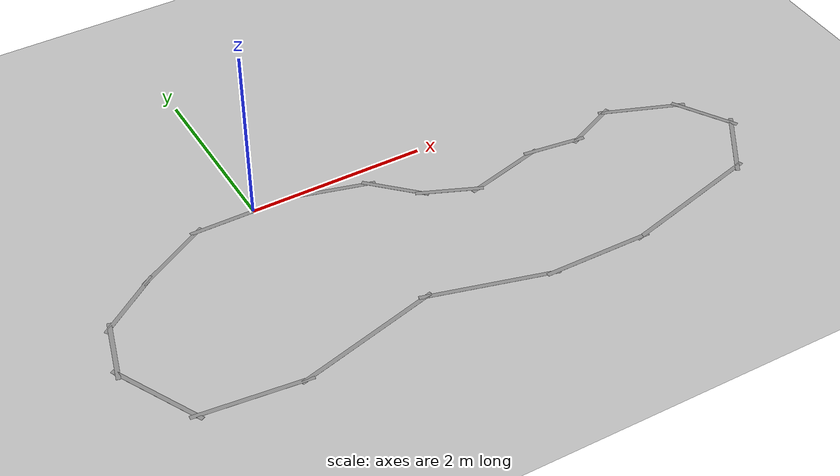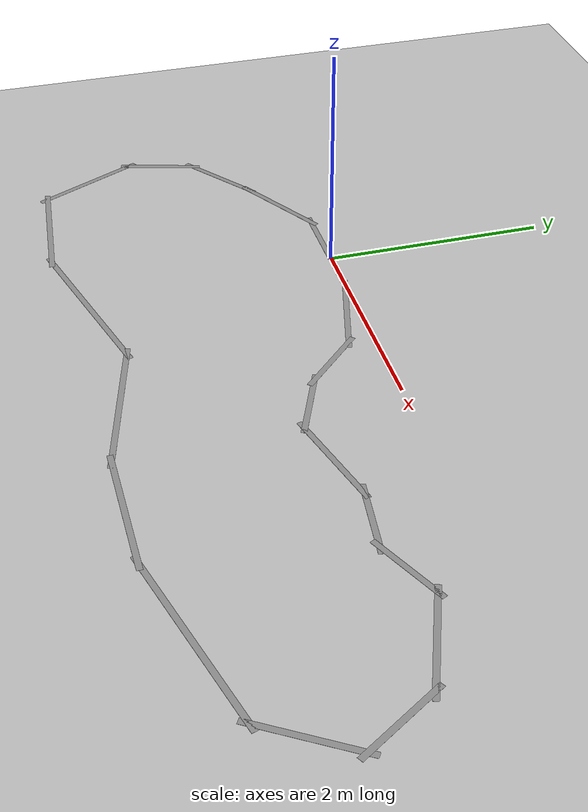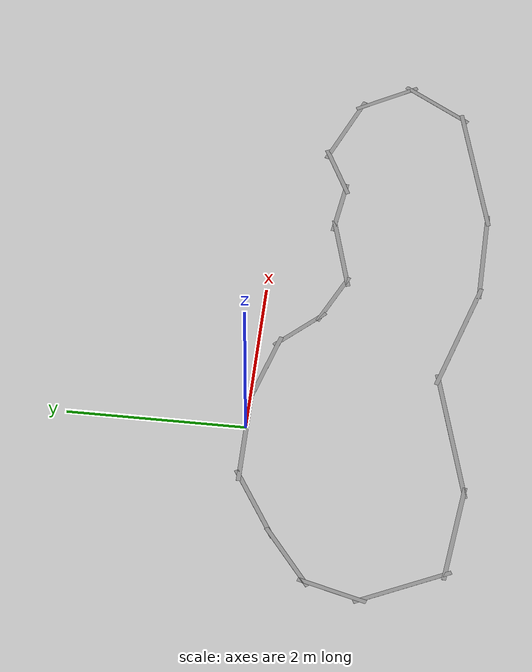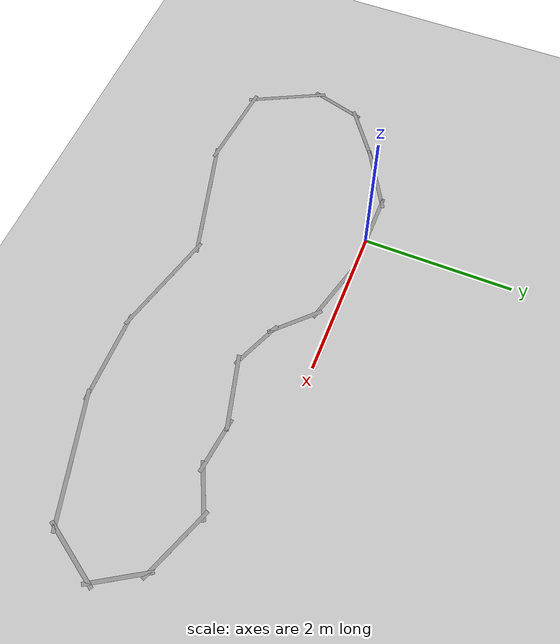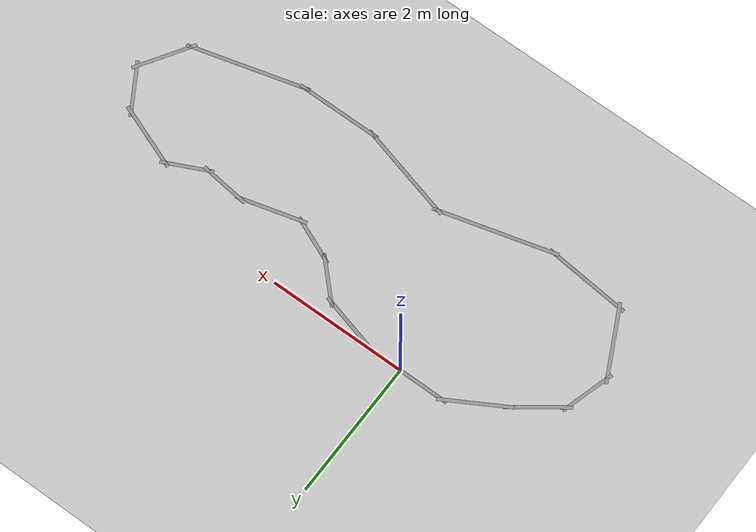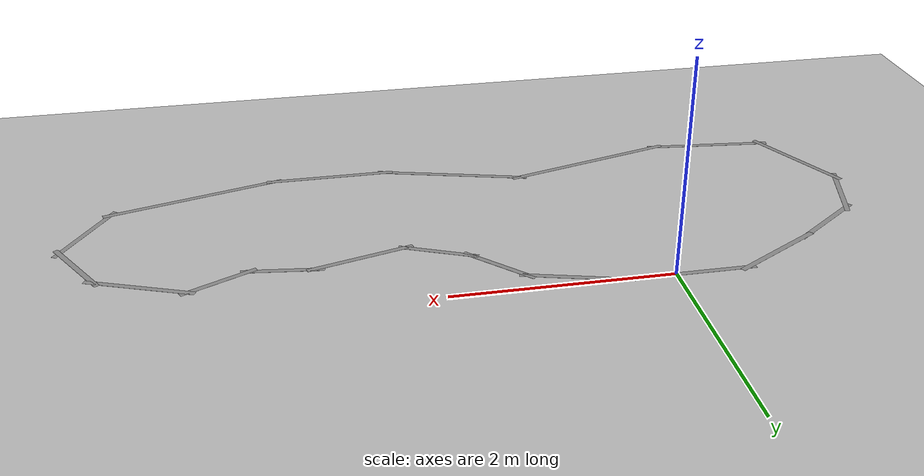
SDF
<sdf version="1.6">
 <world name="default">
  <scene><ambient>0.4 0.4 0.4 1</ambient><background>0.7 0.7 0.7 1</background><shadows>1</shadows></scene>
  <light name="sun" type="directional">
   <pose>0 0 10 0 -0 0</pose>
   <diffuse>0.8 0.8 0.8 1</diffuse>
   <specular>0.2 0.2 0.2 1</specular>
   <attenuation>
    <range>1000</range>
    <constant>0.9</constant>
    <linear>0.01</linear>
    <quadratic>0.001</quadratic>
   </attenuation>
   <direction>-0.5 0.1 -0.9</direction>
  </light>
  <model name="ground_plane">
   <static>1</static>
   <link name="link">
    <collision name="collision">
     <geometry><plane><normal>0 0 1</normal><size>100 100</size></plane></geometry>
     <surface>
      <contact><collide_bitmask>65535</collide_bitmask></contact>
      <friction><ode><mu>100</mu><mu2>50</mu2></ode></friction>
     </surface>
    </collision>
    <visual name="visual">
     <cast_shadows>0</cast_shadows>
     <geometry><plane><normal>0 0 1</normal><size>100 100</size></plane></geometry>
     <material>
      <script><uri>file://media/materials/scripts/gazebo.material</uri><name>Gazebo/Grey</name></script>
     </material>
    </visual>
   </link>
  </model>
  <physics name="default_physics" default="0" type="ode">
   <real_time_update_rate>1000</real_time_update_rate>
   <max_step_size>0.001</max_step_size>
   <real_time_factor>1</real_time_factor>
   <ode>
    <solver>
     <type>quick</type>
     <iters>150</iters>
     <precon_iters>0</precon_iters>
     <sor>1.4</sor>
     <use_dynamic_moi_rescaling>1</use_dynamic_moi_rescaling>
    </solver>
    <constraints>
     <cfm>1e-05</cfm>
     <erp>0.2</erp>
     <contact_max_correcting_vel>2000</contact_max_correcting_vel>
     <contact_surface_layer>0.01</contact_surface_layer>
    </constraints>
   </ode>
  </physics>
  <gravity>0 0 -9.8</gravity>
  <magnetic_field>6e-06 2.3e-05 -4.2e-05</magnetic_field>
  <atmosphere type="adiabatic"/>
  <audio><device>default</device></audio>
  <spherical_coordinates>
   <surface_model>EARTH_WGS84</surface_model>
   <latitude_deg>0</latitude_deg>
   <longitude_deg>0</longitude_deg>
   <elevation>0</elevation>
   <heading_deg>0</heading_deg>
  </spherical_coordinates>
  <model name="test4">
   <pose>1.55808 -1.22996 0 0 -0 0</pose>
   <link name="Wall_0">
    <collision name="Wall_0_Collision">
     <geometry><box><size>0.893816 0.05 0.001</size></box></geometry>
     <pose>0 0 0.0005 0 -0 0</pose>
    </collision>
    <visual name="Wall_0_Visual">
     <pose>0 0 0.0005 0 -0 0</pose>
     <geometry><box><size>0.893816 0.05 0.001</size></box></geometry>
     <material>
      <script><uri>file://media/materials/scripts/gazebo.material</uri><name>Gazebo/Grey</name></script>
      <ambient>1 1 1 1</ambient>
     </material>
     <meta><layer>0</layer></meta>
    </visual>
    <pose>-3.25027 0.582652 0 0 -0 0.632749</pose>
   </link>
   <link name="Wall_1">
    <collision name="Wall_1_Collision">
     <geometry><box><size>1 0.05 0.001</size></box></geometry>
     <pose>0 0 0.0005 0 -0 0</pose>
    </collision>
    <visual name="Wall_1_Visual">
     <pose>0 0 0.0005 0 -0 0</pose>
     <geometry><box><size>1 0.05 0.001</size></box></geometry>
     <material>
      <script><uri>file://media/materials/scripts/gazebo.material</uri><name>Gazebo/Grey</name></script>
      <ambient>1 1 1 1</ambient>
     </material>
     <meta><layer>0</layer></meta>
    </visual>
    <pose>-2.58227 1.01515 0 0 -0 0.52367</pose>
   </link>
   <link name="Wall_10">
    <collision name="Wall_10_Collision">
     <geometry><box><size>0.799227 0.05 0.001</size></box></geometry>
     <pose>0 0 0.0005 0 -0 0</pose>
    </collision>
    <visual name="Wall_10_Visual">
     <pose>0 0 0.0005 0 -0 0</pose>
     <geometry><box><size>0.799227 0.05 0.001</size></box></geometry>
     <material>
      <script><uri>file://media/materials/scripts/gazebo.material</uri><name>Gazebo/Grey</name></script>
      <ambient>1 1 1 1</ambient>
     </material>
     <meta><layer>0</layer></meta>
    </visual>
    <pose>3.55493 0.162195 0 0 -0 -1.02862</pose>
   </link>
   <link name="Wall_11">
    <collision name="Wall_11_Collision">
     <geometry><box><size>0.910165 0.05 0.001</size></box></geometry>
     <pose>0 0 0.0005 0 -0 0</pose>
    </collision>
    <visual name="Wall_11_Visual">
     <pose>0 0 0.0005 0 -0 0</pose>
     <geometry><box><size>0.910165 0.05 0.001</size></box></geometry>
     <material>
      <script><uri>file://media/materials/scripts/gazebo.material</uri><name>Gazebo/Grey</name></script>
      <ambient>1 1 1 1</ambient>
     </material>
     <meta><layer>0</layer></meta>
    </visual>
    <pose>3.52008 -0.437607 0 0 -0 -2.13221</pose>
   </link>
   <link name="Wall_12">
    <collision name="Wall_12_Collision">
     <geometry><box><size>1.75 0.05 0.001</size></box></geometry>
     <pose>0 0 0.0005 0 -0 0</pose>
    </collision>
    <visual name="Wall_12_Visual">
     <pose>0 0 0.0005 0 -0 0</pose>
     <geometry><box><size>1.75 0.05 0.001</size></box></geometry>
     <material>
      <script><uri>file://media/materials/scripts/gazebo.material</uri><name>Gazebo/Grey</name></script>
      <ambient>1 1 1 1</ambient>
     </material>
     <meta><layer>0</layer></meta>
    </visual>
    <pose>2.54523 -0.966348 0 0 -0 -2.87978</pose>
   </link>
   <link name="Wall_13">
    <collision name="Wall_13_Collision">
     <geometry><box><size>1.25 0.05 0.001</size></box></geometry>
     <pose>0 0 0.0005 0 -0 0</pose>
    </collision>
    <visual name="Wall_13_Visual">
     <pose>0 0 0.0005 0 -0 0</pose>
     <geometry><box><size>1.25 0.05 0.001</size></box></geometry>
     <material>
      <script><uri>file://media/materials/scripts/gazebo.material</uri><name>Gazebo/Grey</name></script>
      <ambient>1 1 1 1</ambient>
     </material>
     <meta><layer>0</layer></meta>
    </visual>
    <pose>1.22273 -1.17335 0 0 -0 3.14159</pose>
   </link>
   <link name="Wall_14">
    <collision name="Wall_14_Collision">
     <geometry><box><size>1.5 0.05 0.001</size></box></geometry>
     <pose>0 0 0.0005 0 -0 0</pose>
    </collision>
    <visual name="Wall_14_Visual">
     <pose>0 0 0.0005 0 -0 0</pose>
     <geometry><box><size>1.5 0.05 0.001</size></box></geometry>
     <material>
      <script><uri>file://media/materials/scripts/gazebo.material</uri><name>Gazebo/Grey</name></script>
      <ambient>1 1 1 1</ambient>
     </material>
     <meta><layer>0</layer></meta>
    </visual>
    <pose>0.020733 -0.998347 0 0 -0 2.87937</pose>
   </link>
   <link name="Wall_15">
    <collision name="Wall_15_Collision">
     <geometry><box><size>1.75 0.05 0.001</size></box></geometry>
     <pose>0 0 0.0005 0 -0 0</pose>
    </collision>
    <visual name="Wall_15_Visual">
     <pose>0 0 0.0005 0 -0 0</pose>
     <geometry><box><size>1.75 0.05 0.001</size></box></geometry>
     <material>
      <script><uri>file://media/materials/scripts/gazebo.material</uri><name>Gazebo/Grey</name></script>
      <ambient>1 1 1 1</ambient>
     </material>
     <meta><layer>0</layer></meta>
    </visual>
    <pose>-1.40427 -1.03085 0 0 -0 -2.87934</pose>
   </link>
   <link name="Wall_16">
    <collision name="Wall_16_Collision">
     <geometry><box><size>1.26584 0.05 0.001</size></box></geometry>
     <pose>0 0 0.0005 0 -0 0</pose>
    </collision>
    <visual name="Wall_16_Visual">
     <pose>0 0 0.0005 0 -0 0</pose>
     <geometry><box><size>1.26584 0.05 0.001</size></box></geometry>
     <material>
      <script><uri>file://media/materials/scripts/gazebo.material</uri><name>Gazebo/Grey</name></script>
      <ambient>1 1 1 1</ambient>
     </material>
     <meta><layer>0</layer></meta>
    </visual>
    <pose>-2.73227 -1.18335 0 0 -0 3.04282</pose>
   </link>
   <link name="Wall_17">
    <collision name="Wall_17_Collision">
     <geometry><box><size>1.12826 0.05 0.001</size></box></geometry>
     <pose>0 0 0.0005 0 -0 0</pose>
    </collision>
    <visual name="Wall_17_Visual">
     <pose>0 0 0.0005 0 -0 0</pose>
     <geometry><box><size>1.12826 0.05 0.001</size></box></geometry>
     <material>
      <script><uri>file://media/materials/scripts/gazebo.material</uri><name>Gazebo/Grey</name></script>
      <ambient>1 1 1 1</ambient>
     </material>
     <meta><layer>0</layer></meta>
    </visual>
    <pose>-3.50627 -0.690848 0 0 -0 2.0349</pose>
   </link>
   <link name="Wall_18">
    <collision name="Wall_18_Collision">
     <geometry><box><size>0.790493 0.05 0.001</size></box></geometry>
     <pose>0 0 0.0005 0 -0 0</pose>
    </collision>
    <visual name="Wall_18_Visual">
     <pose>0 0 0.0005 0 -0 0</pose>
     <geometry><box><size>0.790493 0.05 0.001</size></box></geometry>
     <material>
      <script><uri>file://media/materials/scripts/gazebo.material</uri><name>Gazebo/Grey</name></script>
      <ambient>1 1 1 1</ambient>
     </material>
     <meta><layer>0</layer></meta>
    </visual>
    <pose>-3.63777 0.054653 0 0 -0 1.294</pose>
   </link>
   <link name="Wall_2">
    <collision name="Wall_2_Collision">
     <geometry><box><size>1.25 0.05 0.001</size></box></geometry>
     <pose>0 0 0.0005 0 -0 0</pose>
    </collision>
    <visual name="Wall_2_Visual">
     <pose>0 0 0.0005 0 -0 0</pose>
     <geometry><box><size>1.25 0.05 0.001</size></box></geometry>
     <material>
      <script><uri>file://media/materials/scripts/gazebo.material</uri><name>Gazebo/Grey</name></script>
      <ambient>1 1 1 1</ambient>
     </material>
     <meta><layer>0</layer></meta>
    </visual>
    <pose>-1.66427 1.22765 0 0 -0 0</pose>
   </link>
   <link name="Wall_3">
    <collision name="Wall_3_Collision">
     <geometry><box><size>1 0.05 0.001</size></box></geometry>
     <pose>0 0 0.0005 0 -0 0</pose>
    </collision>
    <visual name="Wall_3_Visual">
     <pose>0 0 0.0005 0 -0 0</pose>
     <geometry><box><size>1 0.05 0.001</size></box></geometry>
     <material>
      <script><uri>file://media/materials/scripts/gazebo.material</uri><name>Gazebo/Grey</name></script>
      <ambient>1 1 1 1</ambient>
     </material>
     <meta><layer>0</layer></meta>
    </visual>
    <pose>-0.703767 1.11765 0 0 -0 -0.261815</pose>
   </link>
   <link name="Wall_4">
    <collision name="Wall_4_Collision">
     <geometry><box><size>0.75 0.05 0.001</size></box></geometry>
     <pose>0 0 0.0005 0 -0 0</pose>
    </collision>
    <visual name="Wall_4_Visual">
     <pose>0 0 0.0005 0 -0 0</pose>
     <geometry><box><size>0.75 0.05 0.001</size></box></geometry>
     <material>
      <script><uri>file://media/materials/scripts/gazebo.material</uri><name>Gazebo/Grey</name></script>
      <ambient>1 1 1 1</ambient>
     </material>
     <meta><layer>0</layer></meta>
    </visual>
    <pose>-0.081267 0.795152 0 0 -0 -0.786576</pose>
   </link>
   <link name="Wall_5">
    <collision name="Wall_5_Collision">
     <geometry><box><size>0.738253 0.05 0.001</size></box></geometry>
     <pose>0 0 0.0005 0 -0 0</pose>
    </collision>
    <visual name="Wall_5_Visual">
     <pose>0 0 0.0005 0 -0 0</pose>
     <geometry><box><size>0.738253 0.05 0.001</size></box></geometry>
     <material>
      <script><uri>file://media/materials/scripts/gazebo.material</uri><name>Gazebo/Grey</name></script>
      <ambient>1 1 1 1</ambient>
     </material>
     <meta><layer>0</layer></meta>
    </visual>
    <pose>0.401233 0.467152 0 0 -0 -0.403553</pose>
   </link>
   <link name="Wall_6">
    <collision name="Wall_6_Collision">
     <geometry><box><size>1.00093 0.05 0.001</size></box></geometry>
     <pose>0 0 0.0005 0 -0 0</pose>
    </collision>
    <visual name="Wall_6_Visual">
     <pose>0 0 0.0005 0 -0 0</pose>
     <geometry><box><size>1.00093 0.05 0.001</size></box></geometry>
     <material>
      <script><uri>file://media/materials/scripts/gazebo.material</uri><name>Gazebo/Grey</name></script>
      <ambient>1 1 1 1</ambient>
     </material>
     <meta><layer>0</layer></meta>
    </visual>
    <pose>1.09273 0.451652 0 0 -0 0.261511</pose>
   </link>
   <link name="Wall_7">
    <collision name="Wall_7_Collision">
     <geometry><box><size>0.733216 0.05 0.001</size></box></geometry>
     <pose>0 0 0.0005 0 -0 0</pose>
    </collision>
    <visual name="Wall_7_Visual">
     <pose>0 0 0.0005 0 -0 0</pose>
     <geometry><box><size>0.733216 0.05 0.001</size></box></geometry>
     <material>
      <script><uri>file://media/materials/scripts/gazebo.material</uri><name>Gazebo/Grey</name></script>
      <ambient>1 1 1 1</ambient>
     </material>
     <meta><layer>0</layer></meta>
    </visual>
    <pose>1.78323 0.536652 0 0 -0 -0.120314</pose>
   </link>
   <link name="Wall_8">
    <collision name="Wall_8_Collision">
     <geometry><box><size>0.719404 0.05 0.001</size></box></geometry>
     <pose>0 0 0.0005 0 -0 0</pose>
    </collision>
    <visual name="Wall_8_Visual">
     <pose>0 0 0.0005 0 -0 0</pose>
     <geometry><box><size>0.719404 0.05 0.001</size></box></geometry>
     <material>
      <script><uri>file://media/materials/scripts/gazebo.material</uri><name>Gazebo/Grey</name></script>
      <ambient>1 1 1 1</ambient>
     </material>
     <meta><layer>0</layer></meta>
    </visual>
    <pose>2.32973 0.624152 0 0 -0 0.444797</pose>
   </link>
   <link name="Wall_9">
    <collision name="Wall_9_Collision">
     <geometry><box><size>1.00732 0.05 0.001</size></box></geometry>
     <pose>0 0 0.0005 0 -0 0</pose>
    </collision>
    <visual name="Wall_9_Visual">
     <pose>0 0 0.0005 0 -0 0</pose>
     <geometry><box><size>1.00732 0.05 0.001</size></box></geometry>
     <material>
      <script><uri>file://media/materials/scripts/gazebo.material</uri><name>Gazebo/Grey</name></script>
      <ambient>1 1 1 1</ambient>
     </material>
     <meta><layer>0</layer></meta>
    </visual>
    <pose>2.99708 0.593454 0 0 -0 -0.36547</pose>
   </link>
   <static>1</static>
  </model>
 </world>
</sdf>
